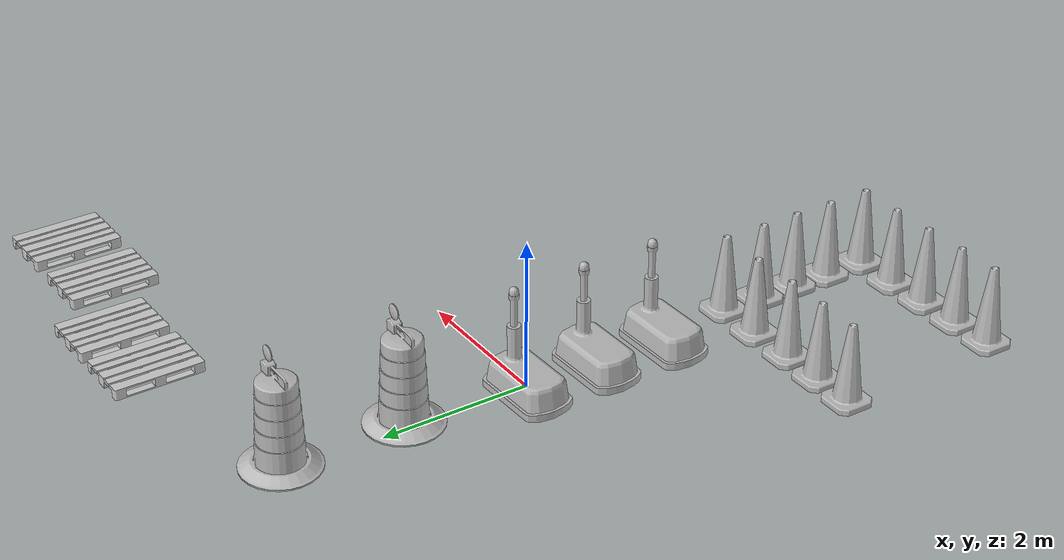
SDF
<sdf version="1.7">
 <world name="default">
  <gravity>0 0 -9.8</gravity>
  <physics name="default_physics" default="0" type="ode">
   <max_step_size>0.001</max_step_size>
   <real_time_factor>1</real_time_factor>
   <real_time_update_rate>1000</real_time_update_rate>
  </physics>
  <light name="Warehouse_CeilingLight_003" type="point">
   <pose>0 0 9 0 -0 0</pose>
   <diffuse>0.5 0.5 0.5 1</diffuse>
   <specular>0.2 0.2 0.2 1</specular>
   <attenuation>
    <range>80</range>
    <constant>0.3</constant>
    <linear>0.01</linear>
    <quadratic>0.001</quadratic>
   </attenuation>
   <direction>0.1 0.1 -1</direction>
   <spot><inner_angle>0</inner_angle><outer_angle>0</outer_angle><falloff>0</falloff></spot>
  </light>
  <magnetic_field>6e-06 2.3e-05 -4.2e-05</magnetic_field>
  <atmosphere type="adiabatic"/>
  <scene><ambient>0.4 0.4 0.4 1</ambient><background>0.7 0.7 0.7 1</background><shadows>1</shadows></scene>
  <spherical_coordinates>
   <surface_model>EARTH_WGS84</surface_model>
   <latitude_deg>0</latitude_deg>
   <longitude_deg>0</longitude_deg>
   <elevation>0</elevation>
   <heading_deg>0</heading_deg>
  </spherical_coordinates>
  <light name="user_directional_light_0" type="directional">
   <pose>0.00905 -0.00479 1 0 -0 0</pose>
   <diffuse>0.5 0.5 0.5 1</diffuse>
   <specular>0.1 0.1 0.1 1</specular>
   <direction>0.1 0.1 -0.9</direction>
   <attenuation>
    <range>20</range>
    <constant>0.5</constant>
    <linear>0.01</linear>
    <quadratic>0.001</quadratic>
   </attenuation>
   <spot><inner_angle>0</inner_angle><outer_angle>0</outer_angle><falloff>0</falloff></spot>
  </light>
  <light name="user_directional_light_1" type="directional">
   <pose>0.024551 -0.025394 1 0 -0 0</pose>
   <diffuse>0.5 0.5 0.5 1</diffuse>
   <specular>0.1 0.1 0.1 1</specular>
   <direction>0.1 0.1 -0.9</direction>
   <attenuation>
    <range>20</range>
    <constant>0.5</constant>
    <linear>0.01</linear>
    <quadratic>0.001</quadratic>
   </attenuation>
   <spot><inner_angle>0</inner_angle><outer_angle>0</outer_angle><falloff>0</falloff></spot>
  </light>
  <light name="user_directional_light_2" type="directional">
   <pose>0.00901 0.02091 1 0 -0 0</pose>
   <diffuse>0.5 0.5 0.5 1</diffuse>
   <specular>0.1 0.1 0.1 1</specular>
   <direction>0.1 0.1 -0.9</direction>
   <attenuation>
    <range>20</range>
    <constant>0.5</constant>
    <linear>0.01</linear>
    <quadratic>0.001</quadratic>
   </attenuation>
   <spot><inner_angle>0</inner_angle><outer_angle>0</outer_angle><falloff>0</falloff></spot>
  </light>
  <light name="user_directional_light_3" type="directional">
   <pose>-0.006412 -0.009892 1 0 -0 0</pose>
   <diffuse>0.5 0.5 0.5 1</diffuse>
   <specular>0.1 0.1 0.1 1</specular>
   <direction>0.1 0.1 -0.9</direction>
   <attenuation>
    <range>20</range>
    <constant>0.5</constant>
    <linear>0.01</linear>
    <quadratic>0.001</quadratic>
   </attenuation>
   <spot><inner_angle>0</inner_angle><outer_angle>0</outer_angle><falloff>0</falloff></spot>
  </light>
  <light name="user_directional_light_4" type="directional">
   <pose>-0.00127 0.000377 1 0 -0 0</pose>
   <diffuse>0.5 0.5 0.5 1</diffuse>
   <specular>0.1 0.1 0.1 1</specular>
   <direction>0.1 0.1 -0.9</direction>
   <attenuation>
    <range>20</range>
    <constant>0.5</constant>
    <linear>0.01</linear>
    <quadratic>0.001</quadratic>
   </attenuation>
   <spot><inner_angle>0</inner_angle><outer_angle>0</outer_angle><falloff>0</falloff></spot>
  </light>
  <model name="Construction Cone">
   <link name="link">
    <collision name="collision">
     <geometry>
      <mesh><scale>10 10 10</scale><uri>model://construction_cone/meshes/construction_cone.dae</uri></mesh>
     </geometry>
    </collision>
    <visual name="visual">
     <geometry>
      <mesh><scale>10 10 10</scale><uri>model://construction_cone/meshes/construction_cone.dae</uri></mesh>
     </geometry>
    </visual>
    <inertial>
     <inertia><ixx>1</ixx><ixy>0</ixy><ixz>0</ixz><iyy>1</iyy><iyz>0</iyz><izz>1</izz></inertia>
     <mass>1</mass>
    </inertial>
   </link>
   <pose>0.033233 -3.00558 0.034224 -1e-06 0 0</pose>
  </model>
  <model name="Construction Cone_clone">
   <link name="link">
    <collision name="collision">
     <geometry>
      <mesh><scale>10 10 10</scale><uri>model://construction_cone/meshes/construction_cone.dae</uri></mesh>
     </geometry>
    </collision>
    <visual name="visual">
     <geometry>
      <mesh><scale>10 10 10</scale><uri>model://construction_cone/meshes/construction_cone.dae</uri></mesh>
     </geometry>
    </visual>
    <inertial>
     <inertia><ixx>1</ixx><ixy>0</ixy><ixz>0</ixz><iyy>1</iyy><iyz>0</iyz><izz>1</izz></inertia>
     <mass>1</mass>
    </inertial>
   </link>
   <pose>0.011553 -3.57008 0.034215 0 -0 0</pose>
  </model>
  <model name="Construction Cone_clone_0">
   <link name="link">
    <collision name="collision">
     <geometry>
      <mesh><scale>10 10 10</scale><uri>model://construction_cone/meshes/construction_cone.dae</uri></mesh>
     </geometry>
    </collision>
    <visual name="visual">
     <geometry>
      <mesh><scale>10 10 10</scale><uri>model://construction_cone/meshes/construction_cone.dae</uri></mesh>
     </geometry>
    </visual>
    <inertial>
     <inertia><ixx>1</ixx><ixy>0</ixy><ixz>0</ixz><iyy>1</iyy><iyz>0</iyz><izz>1</izz></inertia>
     <mass>1</mass>
    </inertial>
   </link>
   <pose>0.014677 -4.09923 0.034224 0 -0 8.2e-05</pose>
  </model>
  <model name="Construction Cone_clone_1">
   <link name="link">
    <collision name="collision">
     <geometry>
      <mesh><scale>10 10 10</scale><uri>model://construction_cone/meshes/construction_cone.dae</uri></mesh>
     </geometry>
    </collision>
    <visual name="visual">
     <geometry>
      <mesh><scale>10 10 10</scale><uri>model://construction_cone/meshes/construction_cone.dae</uri></mesh>
     </geometry>
    </visual>
    <inertial>
     <inertia><ixx>1</ixx><ixy>0</ixy><ixz>0</ixz><iyy>1</iyy><iyz>0</iyz><izz>1</izz></inertia>
     <mass>1</mass>
    </inertial>
   </link>
   <pose>0.002514 -4.63596 0.034224 0 -0 0</pose>
  </model>
  <model name="Construction Cone_clone_2">
   <link name="link">
    <collision name="collision">
     <geometry>
      <mesh><scale>10 10 10</scale><uri>model://construction_cone/meshes/construction_cone.dae</uri></mesh>
     </geometry>
    </collision>
    <visual name="visual">
     <geometry>
      <mesh><scale>10 10 10</scale><uri>model://construction_cone/meshes/construction_cone.dae</uri></mesh>
     </geometry>
    </visual>
    <inertial>
     <inertia><ixx>1</ixx><ixy>0</ixy><ixz>0</ixz><iyy>1</iyy><iyz>0</iyz><izz>1</izz></inertia>
     <mass>1</mass>
    </inertial>
   </link>
   <pose>-0.002355 -5.21153 0.034224 1e-06 -0 0</pose>
  </model>
  <model name="Construction Cone_clone_3">
   <link name="link">
    <collision name="collision">
     <geometry>
      <mesh><scale>10 10 10</scale><uri>model://construction_cone/meshes/construction_cone.dae</uri></mesh>
     </geometry>
    </collision>
    <visual name="visual">
     <geometry>
      <mesh><scale>10 10 10</scale><uri>model://construction_cone/meshes/construction_cone.dae</uri></mesh>
     </geometry>
    </visual>
    <inertial>
     <inertia><ixx>1</ixx><ixy>0</ixy><ixz>0</ixz><iyy>1</iyy><iyz>0</iyz><izz>1</izz></inertia>
     <mass>1</mass>
    </inertial>
   </link>
   <pose>-0.605527 -3.00033 0.034215 1e-06 -1e-06 0</pose>
  </model>
  <model name="Construction Cone_clone_4">
   <link name="link">
    <collision name="collision">
     <geometry>
      <mesh><scale>10 10 10</scale><uri>model://construction_cone/meshes/construction_cone.dae</uri></mesh>
     </geometry>
    </collision>
    <visual name="visual">
     <geometry>
      <mesh><scale>10 10 10</scale><uri>model://construction_cone/meshes/construction_cone.dae</uri></mesh>
     </geometry>
    </visual>
    <inertial>
     <inertia><ixx>1</ixx><ixy>0</ixy><ixz>0</ixz><iyy>1</iyy><iyz>0</iyz><izz>1</izz></inertia>
     <mass>1</mass>
    </inertial>
   </link>
   <pose>-1.23999 -3.01636 0.034215 0 1e-06 0</pose>
  </model>
  <model name="Construction Cone_clone_5">
   <link name="link">
    <collision name="collision">
     <geometry>
      <mesh><scale>10 10 10</scale><uri>model://construction_cone/meshes/construction_cone.dae</uri></mesh>
     </geometry>
    </collision>
    <visual name="visual">
     <geometry>
      <mesh><scale>10 10 10</scale><uri>model://construction_cone/meshes/construction_cone.dae</uri></mesh>
     </geometry>
    </visual>
    <inertial>
     <inertia><ixx>1</ixx><ixy>0</ixy><ixz>0</ixz><iyy>1</iyy><iyz>0</iyz><izz>1</izz></inertia>
     <mass>1</mass>
    </inertial>
   </link>
   <pose>-1.82464 -3.0104 0.034215 1e-06 -0 0</pose>
  </model>
  <model name="Construction Cone_clone_7">
   <link name="link">
    <collision name="collision">
     <geometry>
      <mesh><scale>10 10 10</scale><uri>model://construction_cone/meshes/construction_cone.dae</uri></mesh>
     </geometry>
    </collision>
    <visual name="visual">
     <geometry>
      <mesh><scale>10 10 10</scale><uri>model://construction_cone/meshes/construction_cone.dae</uri></mesh>
     </geometry>
    </visual>
    <inertial>
     <inertia><ixx>1</ixx><ixy>0</ixy><ixz>0</ixz><iyy>1</iyy><iyz>0</iyz><izz>1</izz></inertia>
     <mass>1</mass>
    </inertial>
   </link>
   <pose>-0.603533 -5.21716 0.034224 -0 -0 -0</pose>
  </model>
  <model name="Construction Cone_clone_8">
   <link name="link">
    <collision name="collision">
     <geometry>
      <mesh><scale>10 10 10</scale><uri>model://construction_cone/meshes/construction_cone.dae</uri></mesh>
     </geometry>
    </collision>
    <visual name="visual">
     <geometry>
      <mesh><scale>10 10 10</scale><uri>model://construction_cone/meshes/construction_cone.dae</uri></mesh>
     </geometry>
    </visual>
    <inertial>
     <inertia><ixx>1</ixx><ixy>0</ixy><ixz>0</ixz><iyy>1</iyy><iyz>0</iyz><izz>1</izz></inertia>
     <mass>1</mass>
    </inertial>
   </link>
   <pose>-1.1804 -5.24009 0.034224 0 -0 0</pose>
  </model>
  <model name="Construction Cone_clone_9">
   <link name="link">
    <collision name="collision">
     <geometry>
      <mesh><scale>10 10 10</scale><uri>model://construction_cone/meshes/construction_cone.dae</uri></mesh>
     </geometry>
    </collision>
    <visual name="visual">
     <geometry>
      <mesh><scale>10 10 10</scale><uri>model://construction_cone/meshes/construction_cone.dae</uri></mesh>
     </geometry>
    </visual>
    <inertial>
     <inertia><ixx>1</ixx><ixy>0</ixy><ixz>0</ixz><iyy>1</iyy><iyz>0</iyz><izz>1</izz></inertia>
     <mass>1</mass>
    </inertial>
   </link>
   <pose>-1.7632 -5.26325 0.034224 1e-06 -0 0</pose>
  </model>
  <model name="warehouse_robot">
   <static>1</static>
   <link name="link">
    <visual name="visual">
     <geometry><mesh><uri>model://warehouse_robot/meshes/robot.dae</uri></mesh></geometry>
    </visual>
    <collision name="collision_base">
     <pose>0 0 0.20437 0 -0 0</pose>
     <geometry><box><size>0.55508 1.0228 0.40874</size></box></geometry>
    </collision>
    <collision name="collision_bumper">
     <pose>0 0 0.062205 0 -0 0</pose>
     <geometry><box><size>0.67266 1.17126 0.12441</size></box></geometry>
    </collision>
    <collision name="collision_column_large">
     <pose>0 -0.27539 0.43738 0 -0 0</pose>
     <geometry><cylinder><radius>0.08652</radius><length>0.87476</length></cylinder></geometry>
    </collision>
    <collision name="collision_column_small">
     <pose>0 -0.27539 0.70424 0 -0 0</pose>
     <geometry><cylinder><radius>0.04261</radius><length>1.40848</length></cylinder></geometry>
    </collision>
   </link>
   <pose>-0.183335 -1.9144 0.002557 0.002677 0.007795 1.59685</pose>
  </model>
  <model name="warehouse_robot_clone">
   <static>1</static>
   <link name="link">
    <visual name="visual">
     <geometry><mesh><uri>model://warehouse_robot/meshes/robot.dae</uri></mesh></geometry>
    </visual>
    <collision name="collision_base">
     <pose>0 0 0.20437 0 -0 0</pose>
     <geometry><box><size>0.55508 1.0228 0.40874</size></box></geometry>
    </collision>
    <collision name="collision_bumper">
     <pose>0 0 0.062205 0 -0 0</pose>
     <geometry><box><size>0.67266 1.17126 0.12441</size></box></geometry>
    </collision>
    <collision name="collision_column_large">
     <pose>0 -0.27539 0.43738 0 -0 0</pose>
     <geometry><cylinder><radius>0.08652</radius><length>0.87476</length></cylinder></geometry>
    </collision>
    <collision name="collision_column_small">
     <pose>0 -0.27539 0.70424 0 -0 0</pose>
     <geometry><cylinder><radius>0.04261</radius><length>1.40848</length></cylinder></geometry>
    </collision>
   </link>
   <pose>-0.178783 -0.907536 0.001886 0.002677 0.007795 1.59685</pose>
  </model>
  <model name="warehouse_robot_clone_0">
   <static>1</static>
   <link name="link">
    <visual name="visual">
     <geometry><mesh><uri>model://warehouse_robot/meshes/robot.dae</uri></mesh></geometry>
    </visual>
    <collision name="collision_base">
     <pose>0 0 0.20437 0 -0 0</pose>
     <geometry><box><size>0.55508 1.0228 0.40874</size></box></geometry>
    </collision>
    <collision name="collision_bumper">
     <pose>0 0 0.062205 0 -0 0</pose>
     <geometry><box><size>0.67266 1.17126 0.12441</size></box></geometry>
    </collision>
    <collision name="collision_column_large">
     <pose>0 -0.27539 0.43738 0 -0 0</pose>
     <geometry><cylinder><radius>0.08652</radius><length>0.87476</length></cylinder></geometry>
    </collision>
    <collision name="collision_column_small">
     <pose>0 -0.27539 0.70424 0 -0 0</pose>
     <geometry><cylinder><radius>0.04261</radius><length>1.40848</length></cylinder></geometry>
    </collision>
   </link>
   <pose>-0.200479 0.112268 0.001279 0.002677 0.007795 1.59685</pose>
  </model>
  <model name="Construction Barrel">
   <link name="link">
    <inertial>
     <pose>0 0 0.4 0 -0 0</pose>
     <mass>500</mass>
     <inertia><ixx>51.2096</ixx><iyy>51.2096</iyy><izz>25</izz><ixy>0</ixy><ixz>0</ixz><iyz>0</iyz></inertia>
    </inertial>
    <collision name="collision">
     <geometry><mesh><uri>model://construction_barrel/meshes/construction_barrel.dae</uri></mesh></geometry>
    </collision>
    <visual name="visual">
     <geometry><mesh><uri>model://construction_barrel/meshes/construction_barrel.dae</uri></mesh></geometry>
    </visual>
   </link>
   <pose>0.160886 3.27161 0.00393 -7e-06 -2e-06 0.000234</pose>
  </model>
  <model name="Construction Barrel_clone">
   <link name="link">
    <inertial>
     <pose>0 0 0.4 0 -0 0</pose>
     <mass>500</mass>
     <inertia><ixx>51.2096</ixx><iyy>51.2096</iyy><izz>25</izz><ixy>0</ixy><ixz>0</ixz><iyz>0</iyz></inertia>
    </inertial>
    <collision name="collision">
     <geometry><mesh><uri>model://construction_barrel/meshes/construction_barrel.dae</uri></mesh></geometry>
    </collision>
    <visual name="visual">
     <geometry><mesh><uri>model://construction_barrel/meshes/construction_barrel.dae</uri></mesh></geometry>
    </visual>
   </link>
   <pose>0.139088 1.63089 0.003931 -2e-06 0 0.000187</pose>
  </model>
  <model name="euro_pallet">
   <link name="link">
    <inertial>
     <mass>20</mass>
     <inertia><ixx>2.43</ixx><ixy>0</ixy><ixz>0</ixz><iyy>1.1</iyy><iyz>0</iyz><izz>3.47</izz></inertia>
    </inertial>
    <collision name="collision">
     <pose>0 0 0.05 0 -0 0</pose>
     <geometry><mesh><uri>model://euro_pallet/meshes/pallet.dae</uri><scale>0.1 0.1 0.1</scale></mesh></geometry>
    </collision>
    <visual name="visual">
     <pose>0 0 0.05 0 -0 0</pose>
     <geometry><mesh><uri>model://euro_pallet/meshes/pallet.dae</uri><scale>0.1 0.1 0.1</scale></mesh></geometry>
    </visual>
   </link>
   <pose>3.70569 3.72202 0.106225 0 -0 -0.001226</pose>
  </model>
  <model name="euro_pallet_clone">
   <link name="link">
    <inertial>
     <mass>20</mass>
     <inertia><ixx>2.43</ixx><ixy>0</ixy><ixz>0</ixz><iyy>1.1</iyy><iyz>0</iyz><izz>3.47</izz></inertia>
    </inertial>
    <collision name="collision">
     <pose>0 0 0.05 0 -0 0</pose>
     <geometry><mesh><uri>model://euro_pallet/meshes/pallet.dae</uri><scale>0.1 0.1 0.1</scale></mesh></geometry>
    </collision>
    <visual name="visual">
     <pose>0 0 0.05 0 -0 0</pose>
     <geometry><mesh><uri>model://euro_pallet/meshes/pallet.dae</uri><scale>0.1 0.1 0.1</scale></mesh></geometry>
    </visual>
   </link>
   <pose>2.74072 3.72099 0.106222 0 -8e-06 -0.001187</pose>
  </model>
  <model name="euro_pallet_clone_0">
   <link name="link">
    <inertial>
     <mass>20</mass>
     <inertia><ixx>2.43</ixx><ixy>0</ixy><ixz>0</ixz><iyy>1.1</iyy><iyz>0</iyz><izz>3.47</izz></inertia>
    </inertial>
    <collision name="collision">
     <pose>0 0 0.05 0 -0 0</pose>
     <geometry><mesh><uri>model://euro_pallet/meshes/pallet.dae</uri><scale>0.1 0.1 0.1</scale></mesh></geometry>
    </collision>
    <visual name="visual">
     <pose>0 0 0.05 0 -0 0</pose>
     <geometry><mesh><uri>model://euro_pallet/meshes/pallet.dae</uri><scale>0.1 0.1 0.1</scale></mesh></geometry>
    </visual>
   </link>
   <pose>4.88829 3.29437 0.106225 0 -0 -0.001176</pose>
  </model>
  <model name="euro_pallet_clone_1">
   <link name="link">
    <inertial>
     <mass>20</mass>
     <inertia><ixx>2.43</ixx><ixy>0</ixy><ixz>0</ixz><iyy>1.1</iyy><iyz>0</iyz><izz>3.47</izz></inertia>
    </inertial>
    <collision name="collision">
     <pose>0 0 0.05 0 -0 0</pose>
     <geometry><mesh><uri>model://euro_pallet/meshes/pallet.dae</uri><scale>0.1 0.1 0.1</scale></mesh></geometry>
    </collision>
    <visual name="visual">
     <pose>0 0 0.05 0 -0 0</pose>
     <geometry><mesh><uri>model://euro_pallet/meshes/pallet.dae</uri><scale>0.1 0.1 0.1</scale></mesh></geometry>
    </visual>
   </link>
   <pose>5.9981 3.29742 0.106225 0 -0 -0.001183</pose>
  </model>
  <model name="Construction Cone_clone_5_clone">
   <link name="link">
    <collision name="collision">
     <geometry>
      <mesh><scale>10 10 10</scale><uri>model://construction_cone/meshes/construction_cone.dae</uri></mesh>
     </geometry>
    </collision>
    <visual name="visual">
     <geometry>
      <mesh><scale>10 10 10</scale><uri>model://construction_cone/meshes/construction_cone.dae</uri></mesh>
     </geometry>
    </visual>
    <inertial>
     <inertia><ixx>1</ixx><ixy>0</ixy><ixz>0</ixz><iyy>1</iyy><iyz>0</iyz><izz>1</izz></inertia>
     <mass>1</mass>
    </inertial>
   </link>
   <pose>-2.39483 -3.00042 0.034215 2e-06 -0 0</pose>
  </model>
  <model name="Construction Cone_clone_5_clone_0">
   <link name="link">
    <collision name="collision">
     <geometry>
      <mesh><scale>10 10 10</scale><uri>model://construction_cone/meshes/construction_cone.dae</uri></mesh>
     </geometry>
    </collision>
    <visual name="visual">
     <geometry>
      <mesh><scale>10 10 10</scale><uri>model://construction_cone/meshes/construction_cone.dae</uri></mesh>
     </geometry>
    </visual>
    <inertial>
     <inertia><ixx>1</ixx><ixy>0</ixy><ixz>0</ixz><iyy>1</iyy><iyz>0</iyz><izz>1</izz></inertia>
     <mass>1</mass>
    </inertial>
   </link>
   <pose>-2.33411 -5.27512 0.034215 2e-06 -0 0</pose>
  </model>
 </world>
</sdf>
